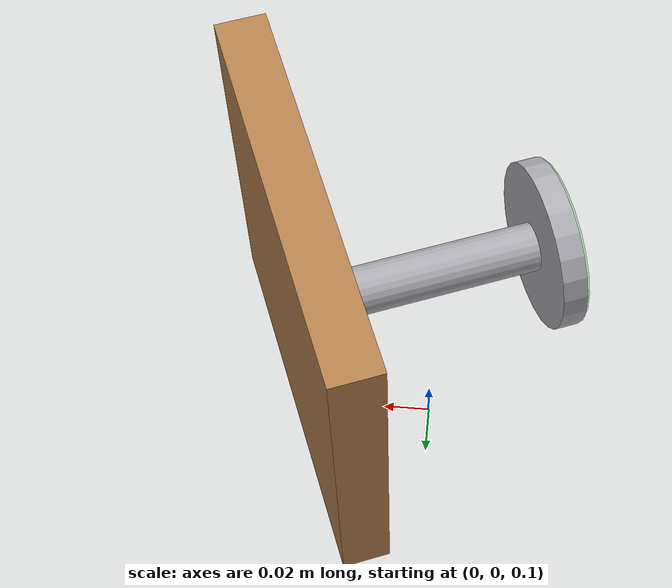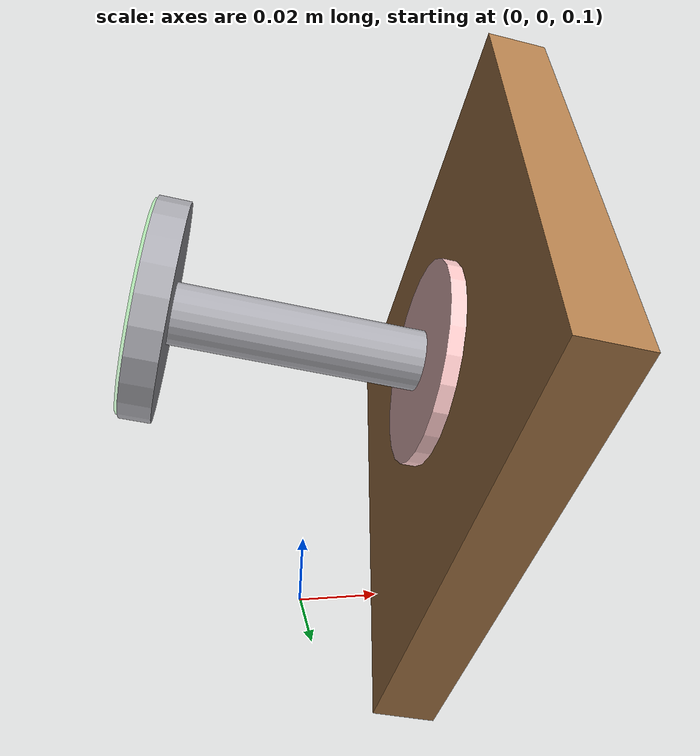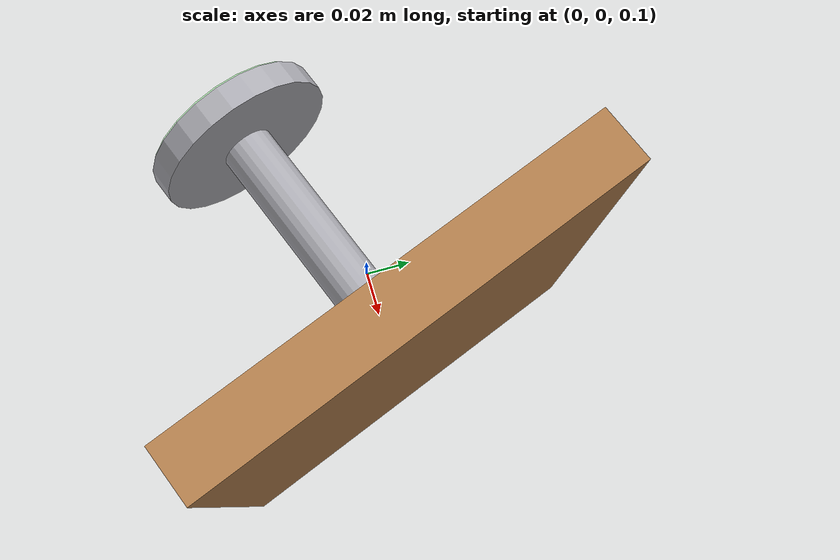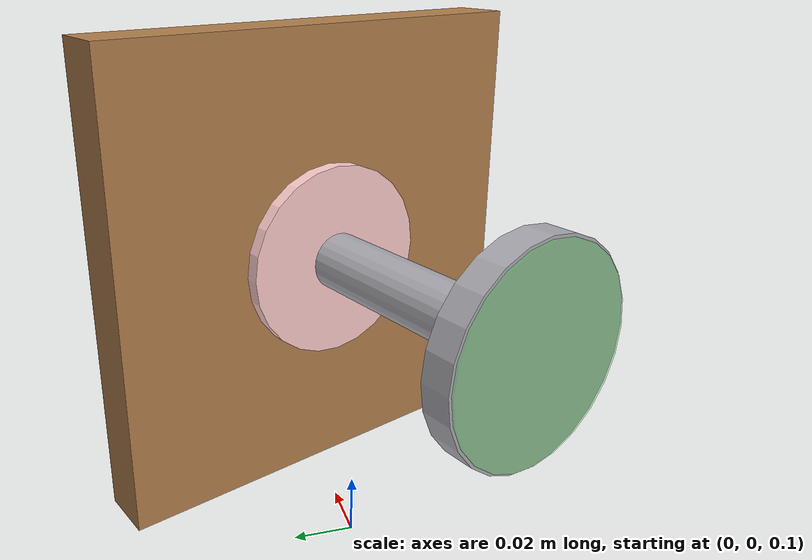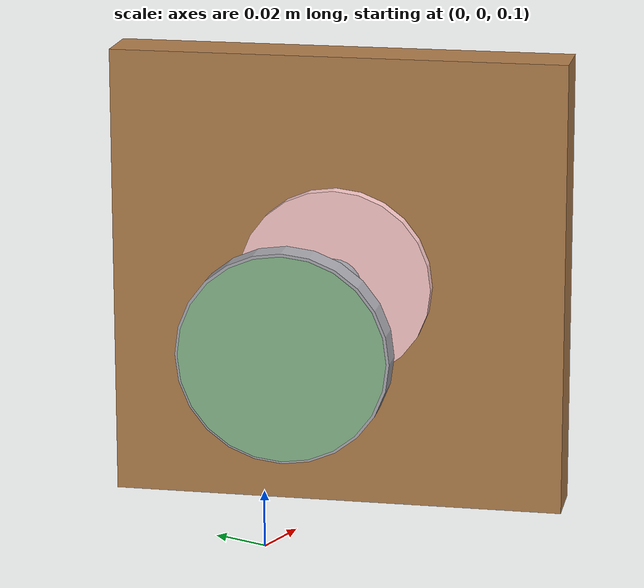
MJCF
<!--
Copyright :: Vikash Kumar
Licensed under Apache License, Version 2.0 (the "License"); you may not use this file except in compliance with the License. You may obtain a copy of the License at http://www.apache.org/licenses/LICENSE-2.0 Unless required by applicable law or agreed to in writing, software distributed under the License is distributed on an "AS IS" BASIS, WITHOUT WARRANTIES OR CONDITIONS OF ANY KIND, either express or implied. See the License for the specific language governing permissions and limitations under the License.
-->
<mujoco model="nail">
    <include file='../common.xml'/>

    <asset>
        <texture type="cube" name="wood" file="../textures/wood.png" />
        <texture type="cube" name="foil" file="../textures/silverRaw.png" />
        <material name="MatWood" texture="wood" texrepeat="3 3" specular="0.4" shininess="0.1" />
        <material name="MatFoil" texture="foil" specular="1" shininess="0.3" rgba="0.9 0.9 0.9 1" />
    </asset>

    <worldbody>
        <body name="object" pos="0.05 0 0.185245" quat="0.583833 0.583368 -0.399421 -0.399104">
            <inertial pos="0 0 0" mass="0.512" diaginertia="0.00110933 0.00110933 0.00218453" />
            <geom name="board" type="box" material="MatWood" size="0.08 0.08 0.01" />
            <site name="nail_goal" pos="0 0 0.01" size="0.034 0.005" type="cylinder" material="MatWood" rgba="1 0.8 0.8 1" />
            <body name="nail" pos="0 0 0">
                <inertial pos="0 0 0.0775281" mass="0.0699004" diaginertia="8.23129e-05 8.23129e-05 2.51426e-05" />
                <joint name="nail_dir" pos="0 0 0" axis="0 0 -1" type="slide" range="-0.01 0.09" frictionloss="2.5" />
                <geom size="0.035 0.005" pos="0 0 0.1" type="cylinder" material="MatFoil" />
                <geom size="0.01 0.05" pos="0 0 0.05" type="cylinder" material="MatFoil" />
                <site name="S_target" pos="0 0 0.101" size="0.034 0.005" type="cylinder" rgba="0 1 0 0.2" />
            </body>
        </body>
    </worldbody>
</mujoco>

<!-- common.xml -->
<mujoco>
    <compiler angle="radian" />

    <asset>
        <material name="MatObject" specular="0.75" shininess="0.1" reflectance="0.5" rgba="0.9 0.7 0.5 1" />
    </asset>

    <default>
        <joint limited="true" margin="0.01" armature="0.001" damping="0.05" frictionloss="0.001" />
        <geom friction="1 0.5 0.01" margin="0.0005" density="1250" />
        <site size="0.005 0 0" rgba="0.4 0.9 0.4 1" />
        <general ctrllimited="true" ctrlrange="-1 1" />
        <tendon limited="true" />

        <default class="object_visual">
            <geom type="mesh" contype="0" conaffinity="0" mass="0" group="1" material="MatObject" />
        </default>

        <default class="object_contact">
            <geom type="mesh" density="1250" condim="4" rgba="0 1 0 0" />
        </default>

        <default class="freejoint">
            <joint limited="false" damping="0"/>
        </default>
    </default>

    <visual>
        <!-- free camera attributes -->
        <global fovy="25" />
    </visual>
</mujoco>
